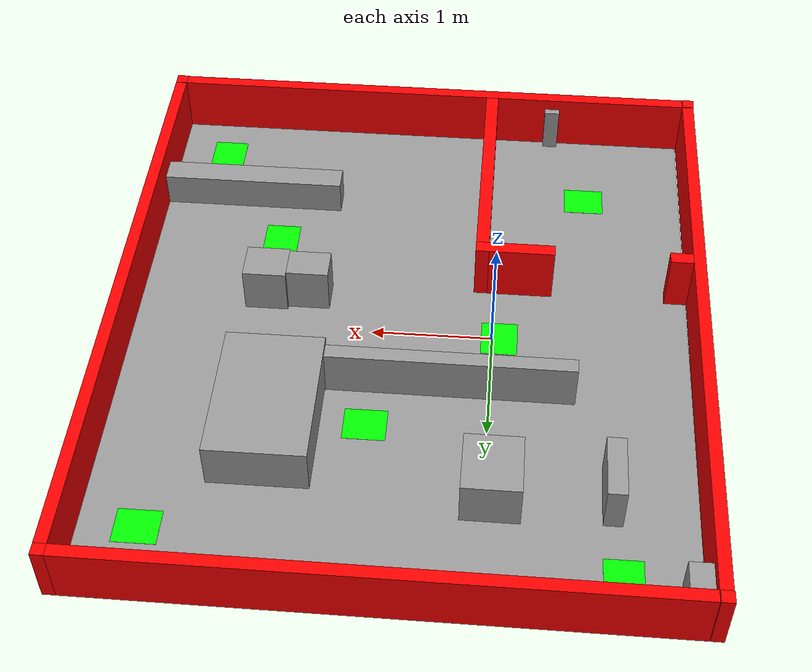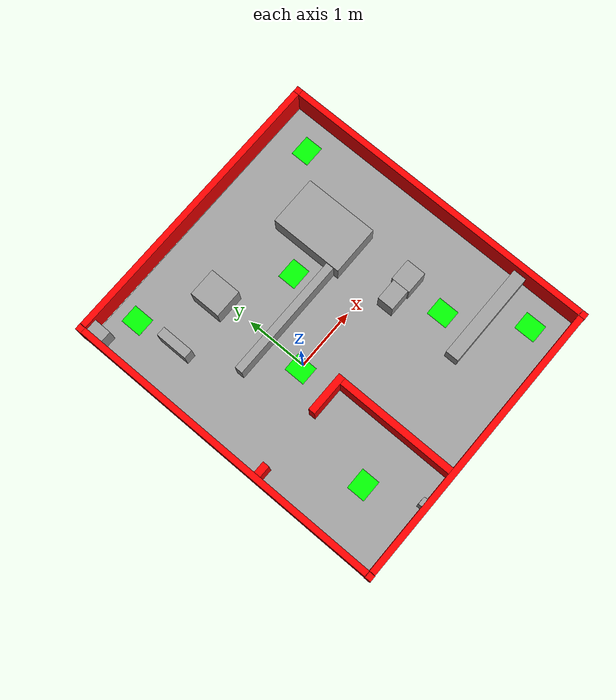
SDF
<sdf version="1.6">
 <world name="default">
  <light name="sun" type="directional">
   <pose>0 0 10 0 -0 0</pose>
   <diffuse>0.8 0.8 0.8 1</diffuse>
   <specular>0.2 0.2 0.2 1</specular>
   <attenuation>
    <range>1000</range>
    <constant>0.9</constant>
    <linear>0.01</linear>
    <quadratic>0.001</quadratic>
   </attenuation>
   <direction>-0.5 0.1 -0.9</direction>
  </light>
  <gravity>0 0 -9.8</gravity>
  <magnetic_field>6e-06 2.3e-05 -4.2e-05</magnetic_field>
  <atmosphere type="adiabatic"/>
  <physics name="default_physics" default="0" type="ode">
   <max_step_size>0.002</max_step_size>
   <real_time_factor>1</real_time_factor>
   <real_time_update_rate>500</real_time_update_rate>
  </physics>
  <scene><ambient>0.4 0.4 0.4 1</ambient><background>0.7 0.7 0.7 1</background><shadows>1</shadows></scene>
  <spherical_coordinates>
   <surface_model>EARTH_WGS84</surface_model>
   <latitude_deg>0</latitude_deg>
   <longitude_deg>0</longitude_deg>
   <elevation>0</elevation>
   <heading_deg>0</heading_deg>
  </spherical_coordinates>
  <model name="walls_1">
   <link name="link_1">
    <pose>4.675 2.6025 0.25 0 -0 0</pose>
    <inertial>
     <mass>1</mass>
     <inertia>
      <ixx>0.166667</ixx>
      <ixy>0</ixy>
      <ixz>0</ixz>
      <iyy>0.166667</iyy>
      <iyz>0</iyz>
      <izz>0.166667</izz>
     </inertia>
     <pose>0 0 0.25 0 -0 0</pose>
    </inertial>
    <visual name="visual">
     <geometry><box><size>0.1 5.205 0.5</size></box></geometry>
     <material>
      <lighting>1</lighting>
      <script><uri>file://media/materials/scripts/gazebo.material</uri><name>Gazebo/Grey</name></script>
      <shader type="pixel"><normal_map>__default__</normal_map></shader>
      <ambient>1 0 0 1</ambient>
      <diffuse>0.7 0.7 0.7 1</diffuse>
      <specular>0.01 0.01 0.01 1</specular>
      <emissive>0 0 0 1</emissive>
     </material>
    </visual>
    <collision name="collision">
     <geometry><box><size>0.1 5.205 0.5</size></box></geometry>
     <surface>
      <friction>
       <ode><mu>1</mu><mu2>1</mu2><fdir1>0 0 0</fdir1><slip1>0</slip1><slip2>0</slip2></ode>
       <torsional>
        <coefficient>1</coefficient>
        <patch_radius>0</patch_radius>
        <surface_radius>0</surface_radius>
        <use_patch_radius>1</use_patch_radius>
        <ode><slip>0</slip></ode>
       </torsional>
      </friction>
      <bounce><restitution_coefficient>0</restitution_coefficient><threshold>1e+06</threshold></bounce>
      <contact>
       <collide_without_contact>0</collide_without_contact>
       <collide_without_contact_bitmask>1</collide_without_contact_bitmask>
       <collide_bitmask>1</collide_bitmask>
       <ode>
        <soft_cfm>0</soft_cfm>
        <soft_erp>0.2</soft_erp>
        <kp>1e+13</kp>
        <kd>1</kd>
        <max_vel>0.01</max_vel>
        <min_depth>0</min_depth>
       </ode>
       <bullet>
        <split_impulse>1</split_impulse>
        <split_impulse_penetration_threshold>-0.01</split_impulse_penetration_threshold>
        <soft_cfm>0</soft_cfm>
        <soft_erp>0.2</soft_erp>
        <kp>1e+13</kp>
        <kd>1</kd>
       </bullet>
      </contact>
     </surface>
    </collision>
   </link>
   <link name="link_1_clone">
    <pose>-0.05 2.6025 0.25 0 -0 0</pose>
    <inertial>
     <mass>1</mass>
     <inertia>
      <ixx>0.166667</ixx>
      <ixy>0</ixy>
      <ixz>0</ixz>
      <iyy>0.166667</iyy>
      <iyz>0</iyz>
      <izz>0.166667</izz>
     </inertia>
    </inertial>
    <visual name="visual">
     <geometry><box><size>0.1 5.205 0.5</size></box></geometry>
     <material>
      <lighting>1</lighting>
      <script><uri>file://media/materials/scripts/gazebo.material</uri><name>Gazebo/Grey</name></script>
      <shader type="pixel"><normal_map>__default__</normal_map></shader>
      <ambient>1 0 0 1</ambient>
      <diffuse>0.7 0.7 0.7 1</diffuse>
      <specular>0.01 0.01 0.01 1</specular>
      <emissive>0 0 0 1</emissive>
     </material>
    </visual>
    <collision name="collision">
     <geometry><box><size>0.1 5.205 0.5</size></box></geometry>
     <surface>
      <friction>
       <ode><mu>1</mu><mu2>1</mu2><fdir1>0 0 0</fdir1><slip1>0</slip1><slip2>0</slip2></ode>
       <torsional>
        <coefficient>1</coefficient>
        <patch_radius>0</patch_radius>
        <surface_radius>0</surface_radius>
        <use_patch_radius>1</use_patch_radius>
        <ode><slip>0</slip></ode>
       </torsional>
      </friction>
      <bounce><restitution_coefficient>0</restitution_coefficient><threshold>1e+06</threshold></bounce>
      <contact>
       <collide_without_contact>0</collide_without_contact>
       <collide_without_contact_bitmask>1</collide_without_contact_bitmask>
       <collide_bitmask>1</collide_bitmask>
       <ode>
        <soft_cfm>0</soft_cfm>
        <soft_erp>0.2</soft_erp>
        <kp>1e+13</kp>
        <kd>1</kd>
        <max_vel>0.01</max_vel>
        <min_depth>0</min_depth>
       </ode>
       <bullet>
        <split_impulse>1</split_impulse>
        <split_impulse_penetration_threshold>-0.01</split_impulse_penetration_threshold>
        <soft_cfm>0</soft_cfm>
        <soft_erp>0.2</soft_erp>
        <kp>1e+13</kp>
        <kd>1</kd>
       </bullet>
      </contact>
     </surface>
    </collision>
   </link>
   <link name="link_1_clone_0">
    <pose>2.3125 5.255 0.25 0 -0 0</pose>
    <inertial>
     <mass>1</mass>
     <inertia>
      <ixx>0.166667</ixx>
      <ixy>0</ixy>
      <ixz>0</ixz>
      <iyy>0.166667</iyy>
      <iyz>0</iyz>
      <izz>0.166667</izz>
     </inertia>
    </inertial>
    <visual name="visual">
     <geometry><box><size>4.625 0.1 0.5</size></box></geometry>
     <material>
      <lighting>1</lighting>
      <script><uri>file://media/materials/scripts/gazebo.material</uri><name>Gazebo/Grey</name></script>
      <shader type="pixel"><normal_map>__default__</normal_map></shader>
      <ambient>1 0 0 1</ambient>
      <diffuse>0.7 0.7 0.7 1</diffuse>
      <specular>0.01 0.01 0.01 1</specular>
      <emissive>0 0 0 1</emissive>
     </material>
    </visual>
    <collision name="collision">
     <geometry><box><size>4.625 0.1 0.5</size></box></geometry>
     <surface>
      <friction>
       <ode><mu>1</mu><mu2>1</mu2><fdir1>0 0 0</fdir1><slip1>0</slip1><slip2>0</slip2></ode>
       <torsional>
        <coefficient>1</coefficient>
        <patch_radius>0</patch_radius>
        <surface_radius>0</surface_radius>
        <use_patch_radius>1</use_patch_radius>
        <ode><slip>0</slip></ode>
       </torsional>
      </friction>
      <bounce><restitution_coefficient>0</restitution_coefficient><threshold>1e+06</threshold></bounce>
      <contact>
       <collide_without_contact>0</collide_without_contact>
       <collide_without_contact_bitmask>1</collide_without_contact_bitmask>
       <collide_bitmask>1</collide_bitmask>
       <ode>
        <soft_cfm>0</soft_cfm>
        <soft_erp>0.2</soft_erp>
        <kp>1e+13</kp>
        <kd>1</kd>
        <max_vel>0.01</max_vel>
        <min_depth>0</min_depth>
       </ode>
       <bullet>
        <split_impulse>1</split_impulse>
        <split_impulse_penetration_threshold>-0.01</split_impulse_penetration_threshold>
        <soft_cfm>0</soft_cfm>
        <soft_erp>0.2</soft_erp>
        <kp>1e+13</kp>
        <kd>1</kd>
       </bullet>
      </contact>
     </surface>
    </collision>
   </link>
   <link name="link_1_clone_0_clone">
    <pose>2.3125 -0.05 0.25 0 -0 0</pose>
    <inertial>
     <mass>1</mass>
     <inertia>
      <ixx>0.166667</ixx>
      <ixy>0</ixy>
      <ixz>0</ixz>
      <iyy>0.166667</iyy>
      <iyz>0</iyz>
      <izz>0.166667</izz>
     </inertia>
    </inertial>
    <visual name="visual">
     <geometry><box><size>4.625 0.1 0.5</size></box></geometry>
     <material>
      <lighting>1</lighting>
      <script><uri>file://media/materials/scripts/gazebo.material</uri><name>Gazebo/Grey</name></script>
      <shader type="pixel"><normal_map>__default__</normal_map></shader>
      <ambient>1 0 0 1</ambient>
      <diffuse>0.7 0.7 0.7 1</diffuse>
      <specular>0.01 0.01 0.01 1</specular>
      <emissive>0 0 0 1</emissive>
     </material>
    </visual>
    <collision name="collision">
     <geometry><box><size>4.625 0.1 0.5</size></box></geometry>
     <surface>
      <friction>
       <ode><mu>1</mu><mu2>1</mu2><fdir1>0 0 0</fdir1><slip1>0</slip1><slip2>0</slip2></ode>
       <torsional>
        <coefficient>1</coefficient>
        <patch_radius>0</patch_radius>
        <surface_radius>0</surface_radius>
        <use_patch_radius>1</use_patch_radius>
        <ode><slip>0</slip></ode>
       </torsional>
      </friction>
      <bounce><restitution_coefficient>0</restitution_coefficient><threshold>1e+06</threshold></bounce>
      <contact>
       <collide_without_contact>0</collide_without_contact>
       <collide_without_contact_bitmask>1</collide_without_contact_bitmask>
       <collide_bitmask>1</collide_bitmask>
       <ode>
        <soft_cfm>0</soft_cfm>
        <soft_erp>0.2</soft_erp>
        <kp>1e+13</kp>
        <kd>1</kd>
        <max_vel>0.01</max_vel>
        <min_depth>0</min_depth>
       </ode>
       <bullet>
        <split_impulse>1</split_impulse>
        <split_impulse_penetration_threshold>-0.01</split_impulse_penetration_threshold>
        <soft_cfm>0</soft_cfm>
        <soft_erp>0.2</soft_erp>
        <kp>1e+13</kp>
        <kd>1</kd>
       </bullet>
      </contact>
     </surface>
    </collision>
   </link>
   <link name="link_1_clone_clone_0">
    <pose>4.68 -0.05 0.25 0 -0 0</pose>
    <inertial>
     <mass>1</mass>
     <inertia>
      <ixx>0.166667</ixx>
      <ixy>0</ixy>
      <ixz>0</ixz>
      <iyy>0.166667</iyy>
      <iyz>0</iyz>
      <izz>0.166667</izz>
     </inertia>
    </inertial>
    <visual name="visual">
     <geometry><box><size>0.1 0.1 0.5</size></box></geometry>
     <material>
      <lighting>1</lighting>
      <script><uri>file://media/materials/scripts/gazebo.material</uri><name>Gazebo/Grey</name></script>
      <shader type="pixel"><normal_map>__default__</normal_map></shader>
      <ambient>1 0 0 1</ambient>
      <diffuse>0.7 0.7 0.7 1</diffuse>
      <specular>0.01 0.01 0.01 1</specular>
      <emissive>0 0 0 1</emissive>
     </material>
    </visual>
    <collision name="collision">
     <geometry><box><size>0.1 0.1 0.5</size></box></geometry>
     <surface>
      <friction>
       <ode><mu>1</mu><mu2>1</mu2><fdir1>0 0 0</fdir1><slip1>0</slip1><slip2>0</slip2></ode>
       <torsional>
        <coefficient>1</coefficient>
        <patch_radius>0</patch_radius>
        <surface_radius>0</surface_radius>
        <use_patch_radius>1</use_patch_radius>
        <ode><slip>0</slip></ode>
       </torsional>
      </friction>
      <bounce><restitution_coefficient>0</restitution_coefficient><threshold>1e+06</threshold></bounce>
      <contact>
       <collide_without_contact>0</collide_without_contact>
       <collide_without_contact_bitmask>1</collide_without_contact_bitmask>
       <collide_bitmask>1</collide_bitmask>
       <ode>
        <soft_cfm>0</soft_cfm>
        <soft_erp>0.2</soft_erp>
        <kp>1e+13</kp>
        <kd>1</kd>
        <max_vel>0.01</max_vel>
        <min_depth>0</min_depth>
       </ode>
       <bullet>
        <split_impulse>1</split_impulse>
        <split_impulse_penetration_threshold>-0.01</split_impulse_penetration_threshold>
        <soft_cfm>0</soft_cfm>
        <soft_erp>0.2</soft_erp>
        <kp>1e+13</kp>
        <kd>1</kd>
       </bullet>
      </contact>
     </surface>
    </collision>
   </link>
   <link name="link_1_clone_clone_0_clone">
    <pose>-0.05 5.26 0.25 0 -0 0</pose>
    <inertial>
     <mass>1</mass>
     <inertia>
      <ixx>0.166667</ixx>
      <ixy>0</ixy>
      <ixz>0</ixz>
      <iyy>0.166667</iyy>
      <iyz>0</iyz>
      <izz>0.166667</izz>
     </inertia>
    </inertial>
    <visual name="visual">
     <geometry><box><size>0.1 0.1 0.5</size></box></geometry>
     <material>
      <lighting>1</lighting>
      <script><uri>file://media/materials/scripts/gazebo.material</uri><name>Gazebo/Grey</name></script>
      <shader type="pixel"><normal_map>__default__</normal_map></shader>
      <ambient>1 0 0 1</ambient>
      <diffuse>0.7 0.7 0.7 1</diffuse>
      <specular>0.01 0.01 0.01 1</specular>
      <emissive>0 0 0 1</emissive>
     </material>
    </visual>
    <collision name="collision">
     <geometry><box><size>0.1 0.1 0.5</size></box></geometry>
     <surface>
      <friction>
       <ode><mu>1</mu><mu2>1</mu2><fdir1>0 0 0</fdir1><slip1>0</slip1><slip2>0</slip2></ode>
       <torsional>
        <coefficient>1</coefficient>
        <patch_radius>0</patch_radius>
        <surface_radius>0</surface_radius>
        <use_patch_radius>1</use_patch_radius>
        <ode><slip>0</slip></ode>
       </torsional>
      </friction>
      <bounce><restitution_coefficient>0</restitution_coefficient><threshold>1e+06</threshold></bounce>
      <contact>
       <collide_without_contact>0</collide_without_contact>
       <collide_without_contact_bitmask>1</collide_without_contact_bitmask>
       <collide_bitmask>1</collide_bitmask>
       <ode>
        <soft_cfm>0</soft_cfm>
        <soft_erp>0.2</soft_erp>
        <kp>1e+13</kp>
        <kd>1</kd>
        <max_vel>0.01</max_vel>
        <min_depth>0</min_depth>
       </ode>
       <bullet>
        <split_impulse>1</split_impulse>
        <split_impulse_penetration_threshold>-0.01</split_impulse_penetration_threshold>
        <soft_cfm>0</soft_cfm>
        <soft_erp>0.2</soft_erp>
        <kp>1e+13</kp>
        <kd>1</kd>
       </bullet>
      </contact>
     </surface>
    </collision>
   </link>
   <link name="link_1_clone_clone_0_clone_0">
    <pose>-0.05 -0.05 0.25 0 -0 0</pose>
    <inertial>
     <mass>1</mass>
     <inertia>
      <ixx>0.166667</ixx>
      <ixy>0</ixy>
      <ixz>0</ixz>
      <iyy>0.166667</iyy>
      <iyz>0</iyz>
      <izz>0.166667</izz>
     </inertia>
    </inertial>
    <visual name="visual">
     <geometry><box><size>0.1 0.1 0.5</size></box></geometry>
     <material>
      <lighting>1</lighting>
      <script><uri>file://media/materials/scripts/gazebo.material</uri><name>Gazebo/Grey</name></script>
      <shader type="pixel"><normal_map>__default__</normal_map></shader>
      <ambient>1 0 0 1</ambient>
      <diffuse>0.7 0.7 0.7 1</diffuse>
      <specular>0.01 0.01 0.01 1</specular>
      <emissive>0 0 0 1</emissive>
     </material>
    </visual>
    <collision name="collision">
     <geometry><box><size>0.1 0.1 0.5</size></box></geometry>
     <surface>
      <friction>
       <ode><mu>1</mu><mu2>1</mu2><fdir1>0 0 0</fdir1><slip1>0</slip1><slip2>0</slip2></ode>
       <torsional>
        <coefficient>1</coefficient>
        <patch_radius>0</patch_radius>
        <surface_radius>0</surface_radius>
        <use_patch_radius>1</use_patch_radius>
        <ode><slip>0</slip></ode>
       </torsional>
      </friction>
      <bounce><restitution_coefficient>0</restitution_coefficient><threshold>1e+06</threshold></bounce>
      <contact>
       <collide_without_contact>0</collide_without_contact>
       <collide_without_contact_bitmask>1</collide_without_contact_bitmask>
       <collide_bitmask>1</collide_bitmask>
       <ode>
        <soft_cfm>0</soft_cfm>
        <soft_erp>0.2</soft_erp>
        <kp>1e+13</kp>
        <kd>1</kd>
        <max_vel>0.01</max_vel>
        <min_depth>0</min_depth>
       </ode>
       <bullet>
        <split_impulse>1</split_impulse>
        <split_impulse_penetration_threshold>-0.01</split_impulse_penetration_threshold>
        <soft_cfm>0</soft_cfm>
        <soft_erp>0.2</soft_erp>
        <kp>1e+13</kp>
        <kd>1</kd>
       </bullet>
      </contact>
     </surface>
    </collision>
   </link>
   <link name="link_1_clone_clone_0_clone_1">
    <pose>4.68 5.26 0.25 0 -0 0</pose>
    <inertial>
     <mass>1</mass>
     <inertia>
      <ixx>0.166667</ixx>
      <ixy>0</ixy>
      <ixz>0</ixz>
      <iyy>0.166667</iyy>
      <iyz>0</iyz>
      <izz>0.166667</izz>
     </inertia>
     <pose>4.68 5.26 0 0 -0 0</pose>
    </inertial>
    <visual name="visual">
     <geometry><box><size>0.1 0.1 0.5</size></box></geometry>
     <material>
      <lighting>1</lighting>
      <script><uri>file://media/materials/scripts/gazebo.material</uri><name>Gazebo/Grey</name></script>
      <shader type="pixel"><normal_map>__default__</normal_map></shader>
      <ambient>1 0 0 1</ambient>
      <diffuse>0.7 0.7 0.7 1</diffuse>
      <specular>0.01 0.01 0.01 1</specular>
      <emissive>0 0 0 1</emissive>
     </material>
    </visual>
    <collision name="collision">
     <geometry><box><size>0.1 0.1 0.5</size></box></geometry>
     <surface>
      <friction>
       <ode><mu>1</mu><mu2>1</mu2><fdir1>0 0 0</fdir1><slip1>0</slip1><slip2>0</slip2></ode>
       <torsional>
        <coefficient>1</coefficient>
        <patch_radius>0</patch_radius>
        <surface_radius>0</surface_radius>
        <use_patch_radius>1</use_patch_radius>
        <ode><slip>0</slip></ode>
       </torsional>
      </friction>
      <bounce><restitution_coefficient>0</restitution_coefficient><threshold>1e+06</threshold></bounce>
      <contact>
       <collide_without_contact>0</collide_without_contact>
       <collide_without_contact_bitmask>1</collide_without_contact_bitmask>
       <collide_bitmask>1</collide_bitmask>
       <ode>
        <soft_cfm>0</soft_cfm>
        <soft_erp>0.2</soft_erp>
        <kp>1e+13</kp>
        <kd>1</kd>
        <max_vel>0.01</max_vel>
        <min_depth>0</min_depth>
       </ode>
       <bullet>
        <split_impulse>1</split_impulse>
        <split_impulse_penetration_threshold>-0.01</split_impulse_penetration_threshold>
        <soft_cfm>0</soft_cfm>
        <soft_erp>0.2</soft_erp>
        <kp>1e+13</kp>
        <kd>1</kd>
       </bullet>
      </contact>
     </surface>
    </collision>
   </link>
   <link name="link_7">
    <pose>4.53 3.205 0.25 -7.4e-05 0.001003 -4.2e-05</pose>
    <inertial>
     <mass>1</mass>
     <inertia>
      <ixx>0.166667</ixx>
      <ixy>0</ixy>
      <ixz>0</ixz>
      <iyy>0.166667</iyy>
      <iyz>0</iyz>
      <izz>0.166667</izz>
     </inertia>
    </inertial>
    <visual name="visual">
     <geometry><box><size>0.19 0.11 0.5</size></box></geometry>
     <material>
      <lighting>1</lighting>
      <script><uri>file://media/materials/scripts/gazebo.material</uri><name>Gazebo/Grey</name></script>
      <shader type="pixel"><normal_map>__default__</normal_map></shader>
      <ambient>1 0 0 1</ambient>
      <diffuse>0.7 0.7 0.7 1</diffuse>
      <specular>0.01 0.01 0.01 1</specular>
      <emissive>0 0 0 1</emissive>
     </material>
    </visual>
    <collision name="collision">
     <geometry><box><size>0.19 0.11 0.5</size></box></geometry>
     <surface>
      <friction>
       <ode><mu>1</mu><mu2>1</mu2><fdir1>0 0 0</fdir1><slip1>0</slip1><slip2>0</slip2></ode>
       <torsional>
        <coefficient>1</coefficient>
        <patch_radius>0</patch_radius>
        <surface_radius>0</surface_radius>
        <use_patch_radius>1</use_patch_radius>
        <ode><slip>0</slip></ode>
       </torsional>
      </friction>
      <bounce><restitution_coefficient>0</restitution_coefficient><threshold>1e+06</threshold></bounce>
      <contact>
       <collide_without_contact>0</collide_without_contact>
       <collide_without_contact_bitmask>1</collide_without_contact_bitmask>
       <collide_bitmask>1</collide_bitmask>
       <ode>
        <soft_cfm>0</soft_cfm>
        <soft_erp>0.2</soft_erp>
        <kp>1e+13</kp>
        <kd>1</kd>
        <max_vel>0.01</max_vel>
        <min_depth>0</min_depth>
       </ode>
       <bullet>
        <split_impulse>1</split_impulse>
        <split_impulse_penetration_threshold>-0.01</split_impulse_penetration_threshold>
        <soft_cfm>0</soft_cfm>
        <soft_erp>0.2</soft_erp>
        <kp>1e+13</kp>
        <kd>1</kd>
       </bullet>
      </contact>
     </surface>
    </collision>
   </link>
   <link name="link_8">
    <pose>2.875 4.205 0.25 -7.4e-05 0.001003 -4.2e-05</pose>
    <inertial>
     <mass>1</mass>
     <inertia>
      <ixx>0.166667</ixx>
      <ixy>0</ixy>
      <ixz>0</ixz>
      <iyy>0.166667</iyy>
      <iyz>0</iyz>
      <izz>0.166667</izz>
     </inertia>
    </inertial>
    <visual name="visual">
     <geometry><box><size>0.11 2.1 0.5</size></box></geometry>
     <material>
      <lighting>1</lighting>
      <script><uri>file://media/materials/scripts/gazebo.material</uri><name>Gazebo/Grey</name></script>
      <shader type="pixel"><normal_map>__default__</normal_map></shader>
      <ambient>1 0 0 1</ambient>
      <diffuse>0.7 0.7 0.7 1</diffuse>
      <specular>0.01 0.01 0.01 1</specular>
      <emissive>0 0 0 1</emissive>
     </material>
    </visual>
    <collision name="collision">
     <geometry><box><size>0.11 2.1 0.5</size></box></geometry>
     <surface>
      <friction>
       <ode><mu>1</mu><mu2>1</mu2><fdir1>0 0 0</fdir1><slip1>0</slip1><slip2>0</slip2></ode>
       <torsional>
        <coefficient>1</coefficient>
        <patch_radius>0</patch_radius>
        <surface_radius>0</surface_radius>
        <use_patch_radius>1</use_patch_radius>
        <ode><slip>0</slip></ode>
       </torsional>
      </friction>
      <bounce><restitution_coefficient>0</restitution_coefficient><threshold>1e+06</threshold></bounce>
      <contact>
       <collide_without_contact>0</collide_without_contact>
       <collide_without_contact_bitmask>1</collide_without_contact_bitmask>
       <collide_bitmask>1</collide_bitmask>
       <ode>
        <soft_cfm>0</soft_cfm>
        <soft_erp>0.2</soft_erp>
        <kp>1e+13</kp>
        <kd>1</kd>
        <max_vel>0.01</max_vel>
        <min_depth>0</min_depth>
       </ode>
       <bullet>
        <split_impulse>1</split_impulse>
        <split_impulse_penetration_threshold>-0.01</split_impulse_penetration_threshold>
        <soft_cfm>0</soft_cfm>
        <soft_erp>0.2</soft_erp>
        <kp>1e+13</kp>
        <kd>1</kd>
       </bullet>
      </contact>
     </surface>
    </collision>
   </link>
   <link name="link_9">
    <pose>3.15 3.21 0.25 -7.4e-05 0.001003 -4.2e-05</pose>
    <inertial>
     <mass>1</mass>
     <inertia>
      <ixx>0.166667</ixx>
      <ixy>0</ixy>
      <ixz>0</ixz>
      <iyy>0.166667</iyy>
      <iyz>0</iyz>
      <izz>0.166667</izz>
     </inertia>
    </inertial>
    <visual name="visual">
     <geometry><box><size>0.66 0.11 0.5</size></box></geometry>
     <material>
      <lighting>1</lighting>
      <script><uri>file://media/materials/scripts/gazebo.material</uri><name>Gazebo/Grey</name></script>
      <shader type="pixel"><normal_map>__default__</normal_map></shader>
      <ambient>1 0 0 1</ambient>
      <diffuse>0.7 0.7 0.7 1</diffuse>
      <specular>0.01 0.01 0.01 1</specular>
      <emissive>0 0 0 1</emissive>
     </material>
    </visual>
    <collision name="collision">
     <geometry><box><size>0.66 0.11 0.5</size></box></geometry>
     <surface>
      <friction>
       <ode><mu>1</mu><mu2>1</mu2><fdir1>0 0 0</fdir1><slip1>0</slip1><slip2>0</slip2></ode>
       <torsional>
        <coefficient>1</coefficient>
        <patch_radius>0</patch_radius>
        <surface_radius>0</surface_radius>
        <use_patch_radius>1</use_patch_radius>
        <ode><slip>0</slip></ode>
       </torsional>
      </friction>
      <bounce><restitution_coefficient>0</restitution_coefficient><threshold>1e+06</threshold></bounce>
      <contact>
       <collide_without_contact>0</collide_without_contact>
       <collide_without_contact_bitmask>1</collide_without_contact_bitmask>
       <collide_bitmask>1</collide_bitmask>
       <ode>
        <soft_cfm>0</soft_cfm>
        <soft_erp>0.2</soft_erp>
        <kp>1e+13</kp>
        <kd>1</kd>
        <max_vel>0.01</max_vel>
        <min_depth>0</min_depth>
       </ode>
       <bullet>
        <split_impulse>1</split_impulse>
        <split_impulse_penetration_threshold>-0.01</split_impulse_penetration_threshold>
        <soft_cfm>0</soft_cfm>
        <soft_erp>0.2</soft_erp>
        <kp>1e+13</kp>
        <kd>1</kd>
       </bullet>
      </contact>
     </surface>
    </collision>
   </link>
   <static>1</static>
   <pose>3 2.62 0 0 -0 3.14</pose>
  </model>
  <model name="conveyor_0">
   <link name="link">
    <pose>0.785 4.1975 0.15 0 -0 0</pose>
    <inertial>
     <mass>0.0784003</mass>
     <inertia>
      <ixx>0.00072425</ixx>
      <ixy>0</ixy>
      <ixz>0</ixz>
      <iyy>0.0139826</iyy>
      <iyz>0</iyz>
      <izz>0.0141387</izz>
     </inertia>
    </inertial>
    <visual name="visual">
     <geometry><box><size>1.57 0.215 0.3</size></box></geometry>
     <material>
      <script><name>Gazebo/Grey</name><uri>file://media/materials/scripts/gazebo.material</uri></script>
      <shader type="pixel"><normal_map>__default__</normal_map></shader>
      <ambient>0.3 0.3 0.3 1</ambient>
      <diffuse>0.7 0.7 0.7 1</diffuse>
      <specular>0.01 0.01 0.01 1</specular>
      <emissive>0 0 0 1</emissive>
     </material>
    </visual>
    <collision name="collision">
     <geometry><box><size>1.57 0.215 0.3</size></box></geometry>
     <surface>
      <friction>
       <ode><mu>1</mu><mu2>1</mu2><fdir1>0 0 0</fdir1><slip1>0</slip1><slip2>0</slip2></ode>
       <torsional>
        <coefficient>1</coefficient>
        <patch_radius>0</patch_radius>
        <surface_radius>0</surface_radius>
        <use_patch_radius>1</use_patch_radius>
        <ode><slip>0</slip></ode>
       </torsional>
      </friction>
      <bounce><restitution_coefficient>0</restitution_coefficient><threshold>1e+06</threshold></bounce>
      <contact>
       <collide_without_contact>0</collide_without_contact>
       <collide_without_contact_bitmask>1</collide_without_contact_bitmask>
       <collide_bitmask>1</collide_bitmask>
       <ode>
        <soft_cfm>0</soft_cfm>
        <soft_erp>0.2</soft_erp>
        <kp>1e+13</kp>
        <kd>1</kd>
        <max_vel>0.01</max_vel>
        <min_depth>0</min_depth>
       </ode>
       <bullet>
        <split_impulse>1</split_impulse>
        <split_impulse_penetration_threshold>-0.01</split_impulse_penetration_threshold>
        <soft_cfm>0</soft_cfm>
        <soft_erp>0.2</soft_erp>
        <kp>1e+13</kp>
        <kd>1</kd>
       </bullet>
      </contact>
     </surface>
    </collision>
   </link>
   <static>1</static>
   <pose>3 2.62 0 0 -0 3.14</pose>
  </model>
  <model name="box10">
   <link name="link">
    <pose>1.435 3.0175 0.2 0 -0 0</pose>
    <inertial>
     <mass>1</mass>
     <inertia>
      <ixx>0.166667</ixx>
      <ixy>0</ixy>
      <ixz>0</ixz>
      <iyy>0.166667</iyy>
      <iyz>0</iyz>
      <izz>0.166667</izz>
     </inertia>
    </inertial>
    <visual name="visual">
     <geometry><box><size>0.35 0.265 0.4</size></box></geometry>
     <material>
      <script><name>Gazebo/Grey</name><uri>file://media/materials/scripts/gazebo.material</uri></script>
      <shader type="pixel"><normal_map>__default__</normal_map></shader>
      <ambient>0.3 0.3 0.3 1</ambient>
      <diffuse>0.7 0.7 0.7 1</diffuse>
      <specular>0.01 0.01 0.01 1</specular>
      <emissive>0 0 0 1</emissive>
     </material>
    </visual>
    <collision name="collision">
     <geometry><box><size>0.35 0.265 0.4</size></box></geometry>
     <surface>
      <friction>
       <ode><mu>1</mu><mu2>1</mu2><fdir1>0 0 0</fdir1><slip1>0</slip1><slip2>0</slip2></ode>
       <torsional>
        <coefficient>1</coefficient>
        <patch_radius>0</patch_radius>
        <surface_radius>0</surface_radius>
        <use_patch_radius>1</use_patch_radius>
        <ode><slip>0</slip></ode>
       </torsional>
      </friction>
      <bounce><restitution_coefficient>0</restitution_coefficient><threshold>1e+06</threshold></bounce>
      <contact>
       <collide_without_contact>0</collide_without_contact>
       <collide_without_contact_bitmask>1</collide_without_contact_bitmask>
       <collide_bitmask>1</collide_bitmask>
       <ode>
        <soft_cfm>0</soft_cfm>
        <soft_erp>0.2</soft_erp>
        <kp>1e+13</kp>
        <kd>1</kd>
        <max_vel>0.01</max_vel>
        <min_depth>0</min_depth>
       </ode>
       <bullet>
        <split_impulse>1</split_impulse>
        <split_impulse_penetration_threshold>-0.01</split_impulse_penetration_threshold>
        <soft_cfm>0</soft_cfm>
        <soft_erp>0.2</soft_erp>
        <kp>1e+13</kp>
        <kd>1</kd>
       </bullet>
      </contact>
     </surface>
    </collision>
   </link>
   <static>1</static>
   <pose>3 2.64 0 0 -0 3.14</pose>
  </model>
  <model name="box9">
   <link name="link">
    <pose>1.08 2.99 0.2 0 -0 0</pose>
    <inertial>
     <mass>1</mass>
     <inertia>
      <ixx>0.166667</ixx>
      <ixy>0</ixy>
      <ixz>0</ixz>
      <iyy>0.166667</iyy>
      <iyz>0</iyz>
      <izz>0.166667</izz>
     </inertia>
    </inertial>
    <visual name="visual">
     <geometry><box><size>0.36 0.32 0.4</size></box></geometry>
     <material>
      <script><name>Gazebo/Grey</name><uri>file://media/materials/scripts/gazebo.material</uri></script>
      <shader type="pixel"><normal_map>__default__</normal_map></shader>
      <ambient>0.3 0.3 0.3 1</ambient>
      <diffuse>0.7 0.7 0.7 1</diffuse>
      <specular>0.01 0.01 0.01 1</specular>
      <emissive>0 0 0 1</emissive>
     </material>
    </visual>
    <collision name="collision">
     <geometry><box><size>0.36 0.32 0.4</size></box></geometry>
     <surface>
      <friction>
       <ode><mu>1</mu><mu2>1</mu2><fdir1>0 0 0</fdir1><slip1>0</slip1><slip2>0</slip2></ode>
       <torsional>
        <coefficient>1</coefficient>
        <patch_radius>0</patch_radius>
        <surface_radius>0</surface_radius>
        <use_patch_radius>1</use_patch_radius>
        <ode><slip>0</slip></ode>
       </torsional>
      </friction>
      <bounce><restitution_coefficient>0</restitution_coefficient><threshold>1e+06</threshold></bounce>
      <contact>
       <collide_without_contact>0</collide_without_contact>
       <collide_without_contact_bitmask>1</collide_without_contact_bitmask>
       <collide_bitmask>1</collide_bitmask>
       <ode>
        <soft_cfm>0</soft_cfm>
        <soft_erp>0.2</soft_erp>
        <kp>1e+13</kp>
        <kd>1</kd>
        <max_vel>0.01</max_vel>
        <min_depth>0</min_depth>
       </ode>
       <bullet>
        <split_impulse>1</split_impulse>
        <split_impulse_penetration_threshold>-0.01</split_impulse_penetration_threshold>
        <soft_cfm>0</soft_cfm>
        <soft_erp>0.2</soft_erp>
        <kp>1e+13</kp>
        <kd>1</kd>
       </bullet>
      </contact>
     </surface>
    </collision>
   </link>
   <static>1</static>
   <pose>3 2.62 0 0 -0 3.14</pose>
  </model>
  <model name="box11">
   <link name="link">
    <pose>1.285 1.5675 0.2 0 -0 0</pose>
    <inertial>
     <mass>1</mass>
     <inertia>
      <ixx>0.166667</ixx>
      <ixy>0</ixy>
      <ixz>0</ixz>
      <iyy>0.166667</iyy>
      <iyz>0</iyz>
      <izz>0.166667</izz>
     </inertia>
    </inertial>
    <visual name="visual">
     <geometry><box><size>0.8 1.195 0.4</size></box></geometry>
     <material>
      <script><name>Gazebo/Grey</name><uri>file://media/materials/scripts/gazebo.material</uri></script>
      <shader type="pixel"><normal_map>__default__</normal_map></shader>
      <ambient>0.3 0.3 0.3 1</ambient>
      <diffuse>0.7 0.7 0.7 1</diffuse>
      <specular>0.01 0.01 0.01 1</specular>
      <emissive>0 0 0 1</emissive>
     </material>
    </visual>
    <collision name="collision">
     <geometry><box><size>0.8 1.195 0.4</size></box></geometry>
     <surface>
      <friction>
       <ode><mu>1</mu><mu2>1</mu2><fdir1>0 0 0</fdir1><slip1>0</slip1><slip2>0</slip2></ode>
       <torsional>
        <coefficient>1</coefficient>
        <patch_radius>0</patch_radius>
        <surface_radius>0</surface_radius>
        <use_patch_radius>1</use_patch_radius>
        <ode><slip>0</slip></ode>
       </torsional>
      </friction>
      <bounce><restitution_coefficient>0</restitution_coefficient><threshold>1e+06</threshold></bounce>
      <contact>
       <collide_without_contact>0</collide_without_contact>
       <collide_without_contact_bitmask>1</collide_without_contact_bitmask>
       <collide_bitmask>1</collide_bitmask>
       <ode>
        <soft_cfm>0</soft_cfm>
        <soft_erp>0.2</soft_erp>
        <kp>1e+13</kp>
        <kd>1</kd>
        <max_vel>0.01</max_vel>
        <min_depth>0</min_depth>
       </ode>
       <bullet>
        <split_impulse>1</split_impulse>
        <split_impulse_penetration_threshold>-0.01</split_impulse_penetration_threshold>
        <soft_cfm>0</soft_cfm>
        <soft_erp>0.2</soft_erp>
        <kp>1e+13</kp>
        <kd>1</kd>
       </bullet>
      </contact>
     </surface>
    </collision>
   </link>
   <static>1</static>
   <pose>3 2.62 0 0 0 -3.14</pose>
  </model>
  <model name="box12">
   <link name="link">
    <pose>2.685 2.0315 0.2 0 -0 0</pose>
    <inertial>
     <mass>1</mass>
     <inertia>
      <ixx>0.166667</ixx>
      <ixy>0</ixy>
      <ixz>0</ixz>
      <iyy>0.166667</iyy>
      <iyz>0</iyz>
      <izz>0.166667</izz>
     </inertia>
    </inertial>
    <visual name="visual">
     <geometry><box><size>2 0.127 0.4</size></box></geometry>
     <material>
      <script><name>Gazebo/Grey</name><uri>file://media/materials/scripts/gazebo.material</uri></script>
      <shader type="pixel"><normal_map>__default__</normal_map></shader>
      <ambient>0.3 0.3 0.3 1</ambient>
      <diffuse>0.7 0.7 0.7 1</diffuse>
      <specular>0.01 0.01 0.01 1</specular>
      <emissive>0 0 0 1</emissive>
     </material>
    </visual>
    <collision name="collision">
     <geometry><box><size>2 0.127 0.4</size></box></geometry>
     <surface>
      <friction>
       <ode><mu>1</mu><mu2>1</mu2><fdir1>0 0 0</fdir1><slip1>0</slip1><slip2>0</slip2></ode>
       <torsional>
        <coefficient>1</coefficient>
        <patch_radius>0</patch_radius>
        <surface_radius>0</surface_radius>
        <use_patch_radius>1</use_patch_radius>
        <ode><slip>0</slip></ode>
       </torsional>
      </friction>
      <bounce><restitution_coefficient>0</restitution_coefficient><threshold>1e+06</threshold></bounce>
      <contact>
       <collide_without_contact>0</collide_without_contact>
       <collide_without_contact_bitmask>1</collide_without_contact_bitmask>
       <collide_bitmask>1</collide_bitmask>
       <ode>
        <soft_cfm>0</soft_cfm>
        <soft_erp>0.2</soft_erp>
        <kp>1e+13</kp>
        <kd>1</kd>
        <max_vel>0.01</max_vel>
        <min_depth>0</min_depth>
       </ode>
       <bullet>
        <split_impulse>1</split_impulse>
        <split_impulse_penetration_threshold>-0.01</split_impulse_penetration_threshold>
        <soft_cfm>0</soft_cfm>
        <soft_erp>0.2</soft_erp>
        <kp>1e+13</kp>
        <kd>1</kd>
       </bullet>
      </contact>
     </surface>
    </collision>
   </link>
   <static>1</static>
   <pose>3 2.62 0 0 -0 3.14</pose>
  </model>
  <model name="box13">
   <link name="link">
    <pose>3.055 1.035 0.2 0 -0 0</pose>
    <inertial>
     <mass>1</mass>
     <inertia>
      <ixx>0.166667</ixx>
      <ixy>0</ixy>
      <ixz>0</ixz>
      <iyy>0.166667</iyy>
      <iyz>0</iyz>
      <izz>0.166667</izz>
     </inertia>
    </inertial>
    <visual name="visual">
     <geometry><box><size>0.46 0.51 0.4</size></box></geometry>
     <material>
      <script><name>Gazebo/Grey</name><uri>file://media/materials/scripts/gazebo.material</uri></script>
      <shader type="pixel"><normal_map>__default__</normal_map></shader>
      <ambient>0.3 0.3 0.3 1</ambient>
      <diffuse>0.7 0.7 0.7 1</diffuse>
      <specular>0.01 0.01 0.01 1</specular>
      <emissive>0 0 0 1</emissive>
     </material>
    </visual>
    <collision name="collision">
     <geometry><box><size>0.46 0.51 0.4</size></box></geometry>
     <surface>
      <friction>
       <ode><mu>1</mu><mu2>1</mu2><fdir1>0 0 0</fdir1><slip1>0</slip1><slip2>0</slip2></ode>
       <torsional>
        <coefficient>1</coefficient>
        <patch_radius>0</patch_radius>
        <surface_radius>0</surface_radius>
        <use_patch_radius>1</use_patch_radius>
        <ode><slip>0</slip></ode>
       </torsional>
      </friction>
      <bounce><restitution_coefficient>0</restitution_coefficient><threshold>1e+06</threshold></bounce>
      <contact>
       <collide_without_contact>0</collide_without_contact>
       <collide_without_contact_bitmask>1</collide_without_contact_bitmask>
       <collide_bitmask>1</collide_bitmask>
       <ode>
        <soft_cfm>0</soft_cfm>
        <soft_erp>0.2</soft_erp>
        <kp>1e+13</kp>
        <kd>1</kd>
        <max_vel>0.01</max_vel>
        <min_depth>0</min_depth>
       </ode>
       <bullet>
        <split_impulse>1</split_impulse>
        <split_impulse_penetration_threshold>-0.01</split_impulse_penetration_threshold>
        <soft_cfm>0</soft_cfm>
        <soft_erp>0.2</soft_erp>
        <kp>1e+13</kp>
        <kd>1</kd>
       </bullet>
      </contact>
     </surface>
    </collision>
   </link>
   <static>1</static>
   <pose>3 2.62 0 0 -0 3.14</pose>
  </model>
  <model name="box15">
   <link name="link">
    <pose>4.535 0.14 0.2 0 -0 0</pose>
    <inertial>
     <mass>1</mass>
     <inertia>
      <ixx>0.166667</ixx>
      <ixy>0</ixy>
      <ixz>0</ixz>
      <iyy>0.166667</iyy>
      <iyz>0</iyz>
      <izz>0.166667</izz>
     </inertia>
    </inertial>
    <visual name="visual">
     <geometry><box><size>0.18 0.28 0.4</size></box></geometry>
     <material>
      <script><name>Gazebo/Grey</name><uri>file://media/materials/scripts/gazebo.material</uri></script>
      <shader type="pixel"><normal_map>__default__</normal_map></shader>
      <ambient>0.3 0.3 0.3 1</ambient>
      <diffuse>0.7 0.7 0.7 1</diffuse>
      <specular>0.01 0.01 0.01 1</specular>
      <emissive>0 0 0 1</emissive>
     </material>
    </visual>
    <collision name="collision">
     <geometry><box><size>0.18 0.28 0.4</size></box></geometry>
     <surface>
      <friction>
       <ode><mu>1</mu><mu2>1</mu2><fdir1>0 0 0</fdir1><slip1>0</slip1><slip2>0</slip2></ode>
       <torsional>
        <coefficient>1</coefficient>
        <patch_radius>0</patch_radius>
        <surface_radius>0</surface_radius>
        <use_patch_radius>1</use_patch_radius>
        <ode><slip>0</slip></ode>
       </torsional>
      </friction>
      <bounce><restitution_coefficient>0</restitution_coefficient><threshold>1e+06</threshold></bounce>
      <contact>
       <collide_without_contact>0</collide_without_contact>
       <collide_without_contact_bitmask>1</collide_without_contact_bitmask>
       <collide_bitmask>1</collide_bitmask>
       <ode>
        <soft_cfm>0</soft_cfm>
        <soft_erp>0.2</soft_erp>
        <kp>1e+13</kp>
        <kd>1</kd>
        <max_vel>0.01</max_vel>
        <min_depth>0</min_depth>
       </ode>
       <bullet>
        <split_impulse>1</split_impulse>
        <split_impulse_penetration_threshold>-0.01</split_impulse_penetration_threshold>
        <soft_cfm>0</soft_cfm>
        <soft_erp>0.2</soft_erp>
        <kp>1e+13</kp>
        <kd>1</kd>
       </bullet>
      </contact>
     </surface>
    </collision>
   </link>
   <static>1</static>
   <pose>3 2.62 0 0 -0 3.14</pose>
  </model>
  <model name="box14_1">
   <link name="link">
    <pose>3.97 1.0775 0.2 0 -0 0</pose>
    <inertial>
     <mass>1</mass>
     <inertia>
      <ixx>0.166667</ixx>
      <ixy>0</ixy>
      <ixz>0</ixz>
      <iyy>0.166667</iyy>
      <iyz>0</iyz>
      <izz>0.166667</izz>
     </inertia>
    </inertial>
    <visual name="visual">
     <geometry><box><size>0.15 0.525 0.4</size></box></geometry>
     <material>
      <script><name>Gazebo/Grey</name><uri>file://media/materials/scripts/gazebo.material</uri></script>
      <shader type="pixel"><normal_map>__default__</normal_map></shader>
      <ambient>0.3 0.3 0.3 1</ambient>
      <diffuse>0.7 0.7 0.7 1</diffuse>
      <specular>0.01 0.01 0.01 1</specular>
      <emissive>0 0 0 1</emissive>
     </material>
    </visual>
    <collision name="collision">
     <geometry><box><size>0.15 0.525 0.4</size></box></geometry>
     <surface>
      <friction>
       <ode><mu>1</mu><mu2>1</mu2><fdir1>0 0 0</fdir1><slip1>0</slip1><slip2>0</slip2></ode>
       <torsional>
        <coefficient>1</coefficient>
        <patch_radius>0</patch_radius>
        <surface_radius>0</surface_radius>
        <use_patch_radius>1</use_patch_radius>
        <ode><slip>0</slip></ode>
       </torsional>
      </friction>
      <bounce><restitution_coefficient>0</restitution_coefficient><threshold>1e+06</threshold></bounce>
      <contact>
       <collide_without_contact>0</collide_without_contact>
       <collide_without_contact_bitmask>1</collide_without_contact_bitmask>
       <collide_bitmask>1</collide_bitmask>
       <ode>
        <soft_cfm>0</soft_cfm>
        <soft_erp>0.2</soft_erp>
        <kp>1e+13</kp>
        <kd>1</kd>
        <max_vel>0.01</max_vel>
        <min_depth>0</min_depth>
       </ode>
       <bullet>
        <split_impulse>1</split_impulse>
        <split_impulse_penetration_threshold>-0.01</split_impulse_penetration_threshold>
        <soft_cfm>0</soft_cfm>
        <soft_erp>0.2</soft_erp>
        <kp>1e+13</kp>
        <kd>1</kd>
       </bullet>
      </contact>
     </surface>
    </collision>
   </link>
   <static>1</static>
   <pose>3 2.62 0 0 -0 3.14</pose>
  </model>
  <model name="box19">
   <link name="link">
    <pose>3.435 5.175 0.2 0 -0 0</pose>
    <inertial>
     <mass>1</mass>
     <inertia>
      <ixx>0.166667</ixx>
      <ixy>0</ixy>
      <ixz>0</ixz>
      <iyy>0.166667</iyy>
      <iyz>0</iyz>
      <izz>0.166667</izz>
     </inertia>
    </inertial>
    <visual name="visual">
     <geometry><box><size>0.13 0.06 0.4</size></box></geometry>
     <material>
      <script><name>Gazebo/Grey</name><uri>file://media/materials/scripts/gazebo.material</uri></script>
      <shader type="pixel"><normal_map>__default__</normal_map></shader>
      <ambient>0.3 0.3 0.3 1</ambient>
      <diffuse>0.7 0.7 0.7 1</diffuse>
      <specular>0.01 0.01 0.01 1</specular>
      <emissive>0 0 0 1</emissive>
     </material>
    </visual>
    <collision name="collision">
     <geometry><box><size>0.13 0.06 0.4</size></box></geometry>
     <surface>
      <friction>
       <ode><mu>1</mu><mu2>1</mu2><fdir1>0 0 0</fdir1><slip1>0</slip1><slip2>0</slip2></ode>
       <torsional>
        <coefficient>1</coefficient>
        <patch_radius>0</patch_radius>
        <surface_radius>0</surface_radius>
        <use_patch_radius>1</use_patch_radius>
        <ode><slip>0</slip></ode>
       </torsional>
      </friction>
      <bounce><restitution_coefficient>0</restitution_coefficient><threshold>1e+06</threshold></bounce>
      <contact>
       <collide_without_contact>0</collide_without_contact>
       <collide_without_contact_bitmask>1</collide_without_contact_bitmask>
       <collide_bitmask>1</collide_bitmask>
       <ode>
        <soft_cfm>0</soft_cfm>
        <soft_erp>0.2</soft_erp>
        <kp>1e+13</kp>
        <kd>1</kd>
        <max_vel>0.01</max_vel>
        <min_depth>0</min_depth>
       </ode>
       <bullet>
        <split_impulse>1</split_impulse>
        <split_impulse_penetration_threshold>-0.01</split_impulse_penetration_threshold>
        <soft_cfm>0</soft_cfm>
        <soft_erp>0.2</soft_erp>
        <kp>1e+13</kp>
        <kd>1</kd>
       </bullet>
      </contact>
     </surface>
    </collision>
   </link>
   <static>1</static>
   <pose>3 2.62 0 0 -0 3.14</pose>
  </model>
  <model name="waypoints_0">
   <link name="link">
    <pose>3.7675 4.375 0 0 -0 0</pose>
    <inertial>
     <mass>1</mass>
     <inertia>
      <ixx>0.166667</ixx>
      <ixy>0</ixy>
      <ixz>0</ixz>
      <iyy>0.166667</iyy>
      <iyz>0</iyz>
      <izz>0.166667</izz>
     </inertia>
    </inertial>
    <visual name="visual">
     <geometry><box><size>0.345 0.3 0.01</size></box></geometry>
     <material>
      <script><name>Gazebo/Grey</name><uri>file://media/materials/scripts/gazebo.material</uri></script>
      <shader type="pixel"><normal_map>__default__</normal_map></shader>
      <ambient>0 1 0 1</ambient>
      <diffuse>0.7 0.7 0.7 1</diffuse>
      <specular>0.01 0.01 0.01 1</specular>
      <emissive>0 0 0 1</emissive>
     </material>
    </visual>
   </link>
   <link name="link_clone_1">
    <pose>0.45 4.7825 0 0 -0 0</pose>
    <inertial>
     <mass>1</mass>
     <inertia>
      <ixx>0.166667</ixx>
      <ixy>0</ixy>
      <ixz>0</ixz>
      <iyy>0.166667</iyy>
      <iyz>0</iyz>
      <izz>0.166667</izz>
     </inertia>
    </inertial>
    <visual name="visual">
     <geometry><box><size>0.3 0.345 0.01</size></box></geometry>
     <material>
      <script><name>Gazebo/Grey</name><uri>file://media/materials/scripts/gazebo.material</uri></script>
      <shader type="pixel"><normal_map>__default__</normal_map></shader>
      <ambient>0 1 0 1</ambient>
      <diffuse>0.7 0.7 0.7 1</diffuse>
      <specular>0.01 0.01 0.01 1</specular>
      <emissive>0 0 0 1</emissive>
     </material>
    </visual>
   </link>
   <link name="link_clone_1_clone">
    <pose>1.1 3.6725 0 0 -0 0</pose>
    <inertial>
     <mass>1</mass>
     <inertia>
      <ixx>0.166667</ixx>
      <ixy>0</ixy>
      <ixz>0</ixz>
      <iyy>0.166667</iyy>
      <iyz>0</iyz>
      <izz>0.166667</izz>
     </inertia>
    </inertial>
    <visual name="visual">
     <geometry><box><size>0.3 0.345 0.01</size></box></geometry>
     <material>
      <script><name>Gazebo/Grey</name><uri>file://media/materials/scripts/gazebo.material</uri></script>
      <shader type="pixel"><normal_map>__default__</normal_map></shader>
      <ambient>0 1 0 1</ambient>
      <diffuse>0.7 0.7 0.7 1</diffuse>
      <specular>0.01 0.01 0.01 1</specular>
      <emissive>0 0 0 1</emissive>
     </material>
    </visual>
   </link>
   <link name="link_clone_1_clone_0">
    <pose>0.4525 0.53 0 0 -0 0</pose>
    <inertial>
     <mass>1</mass>
     <inertia>
      <ixx>0.166667</ixx>
      <ixy>0</ixy>
      <ixz>0</ixz>
      <iyy>0.166667</iyy>
      <iyz>0</iyz>
      <izz>0.166667</izz>
     </inertia>
    </inertial>
    <visual name="visual">
     <geometry><box><size>0.345 0.3 0.01</size></box></geometry>
     <material>
      <script><name>Gazebo/Grey</name><uri>file://media/materials/scripts/gazebo.material</uri></script>
      <shader type="pixel"><normal_map>__default__</normal_map></shader>
      <ambient>0 1 0 1</ambient>
      <diffuse>0.7 0.7 0.7 1</diffuse>
      <specular>0.01 0.01 0.01 1</specular>
      <emissive>0 0 0 1</emissive>
     </material>
    </visual>
   </link>
   <link name="link_clone_1_clone_1">
    <pose>2.0425 1.625 0 0 -0 0</pose>
    <inertial>
     <mass>1</mass>
     <inertia>
      <ixx>0.166667</ixx>
      <ixy>0</ixy>
      <ixz>0</ixz>
      <iyy>0.166667</iyy>
      <iyz>0</iyz>
      <izz>0.166667</izz>
     </inertia>
    </inertial>
    <visual name="visual">
     <geometry><box><size>0.345 0.3 0.01</size></box></geometry>
     <material>
      <script><name>Gazebo/Grey</name><uri>file://media/materials/scripts/gazebo.material</uri></script>
      <shader type="pixel"><normal_map>__default__</normal_map></shader>
      <ambient>0 1 0 1</ambient>
      <diffuse>0.7 0.7 0.7 1</diffuse>
      <specular>0.01 0.01 0.01 1</specular>
      <emissive>0 0 0 1</emissive>
     </material>
    </visual>
   </link>
   <link name="link_clone_1_clone_2">
    <pose>4.045 0.3375 0 0 -0 0</pose>
    <inertial>
     <mass>1</mass>
     <inertia>
      <ixx>0.166667</ixx>
      <ixy>0</ixy>
      <ixz>0</ixz>
      <iyy>0.166667</iyy>
      <iyz>0</iyz>
      <izz>0.166667</izz>
     </inertia>
    </inertial>
    <visual name="visual">
     <geometry><box><size>0.3 0.345 0.01</size></box></geometry>
     <material>
      <script><name>Gazebo/Grey</name><uri>file://media/materials/scripts/gazebo.material</uri></script>
      <shader type="pixel"><normal_map>__default__</normal_map></shader>
      <ambient>0 1 0 1</ambient>
      <diffuse>0.7 0.7 0.7 1</diffuse>
      <specular>0.01 0.01 0.01 1</specular>
      <emissive>0 0 0 1</emissive>
     </material>
    </visual>
   </link>
   <link name="link_clone_1_clone_3">
    <pose>3.065 2.6225 0 0 -0 0</pose>
    <inertial>
     <mass>1</mass>
     <inertia>
      <ixx>0.166667</ixx>
      <ixy>0</ixy>
      <ixz>0</ixz>
      <iyy>0.166667</iyy>
      <iyz>0</iyz>
      <izz>0.166667</izz>
     </inertia>
    </inertial>
    <visual name="visual">
     <geometry><box><size>0.3 0.345 0.01</size></box></geometry>
     <material>
      <script><name>Gazebo/Grey</name><uri>file://media/materials/scripts/gazebo.material</uri></script>
      <shader type="pixel"><normal_map>__default__</normal_map></shader>
      <ambient>0 1 0 1</ambient>
      <diffuse>0.7 0.7 0.7 1</diffuse>
      <specular>0.01 0.01 0.01 1</specular>
      <emissive>0 0 0 1</emissive>
     </material>
    </visual>
   </link>
   <static>1</static>
   <pose>3 2.62 0 0 0 -3.14</pose>
  </model>
  <model name="ground_0_0_0">
   <link name="link">
    <inertial>
     <mass>1</mass>
     <inertia>
      <ixx>0.166667</ixx>
      <ixy>0</ixy>
      <ixz>0</ixz>
      <iyy>0.166667</iyy>
      <iyz>0</iyz>
      <izz>0.166667</izz>
     </inertia>
    </inertial>
    <visual name="visual">
     <geometry><box><size>4.625 5.205 0.009</size></box></geometry>
     <material>
      <script><name>Gazebo/Grey</name><uri>file://media/materials/scripts/gazebo.material</uri></script>
      <shader type="pixel"><normal_map>__default__</normal_map></shader>
      <ambient>0.3 0.3 0.3 1</ambient>
      <diffuse>0.7 0.7 0.7 1</diffuse>
      <specular>0.01 0.01 0.01 1</specular>
      <emissive>0 0 0 1</emissive>
     </material>
    </visual>
    <collision name="collision_0">
     <geometry><box><size>4.625 5.205 0.01</size></box></geometry>
     <surface>
      <friction>
       <ode><mu>1</mu><mu2>1</mu2><fdir1>0 0 0</fdir1><slip1>0</slip1><slip2>0</slip2></ode>
       <torsional>
        <coefficient>1</coefficient>
        <patch_radius>0</patch_radius>
        <surface_radius>0</surface_radius>
        <use_patch_radius>1</use_patch_radius>
        <ode><slip>0</slip></ode>
       </torsional>
      </friction>
      <bounce><restitution_coefficient>0</restitution_coefficient><threshold>1e+06</threshold></bounce>
      <contact>
       <collide_without_contact>0</collide_without_contact>
       <collide_without_contact_bitmask>1</collide_without_contact_bitmask>
       <collide_bitmask>1</collide_bitmask>
       <ode>
        <soft_cfm>0</soft_cfm>
        <soft_erp>0.2</soft_erp>
        <kp>1e+13</kp>
        <kd>1</kd>
        <max_vel>0.01</max_vel>
        <min_depth>0</min_depth>
       </ode>
       <bullet>
        <split_impulse>1</split_impulse>
        <split_impulse_penetration_threshold>-0.01</split_impulse_penetration_threshold>
        <soft_cfm>0</soft_cfm>
        <soft_erp>0.2</soft_erp>
        <kp>1e+13</kp>
        <kd>1</kd>
       </bullet>
      </contact>
     </surface>
    </collision>
   </link>
   <static>1</static>
   <pose>0.690052 0.013626 0 0 -0 0</pose>
  </model>
 </world>
</sdf>
